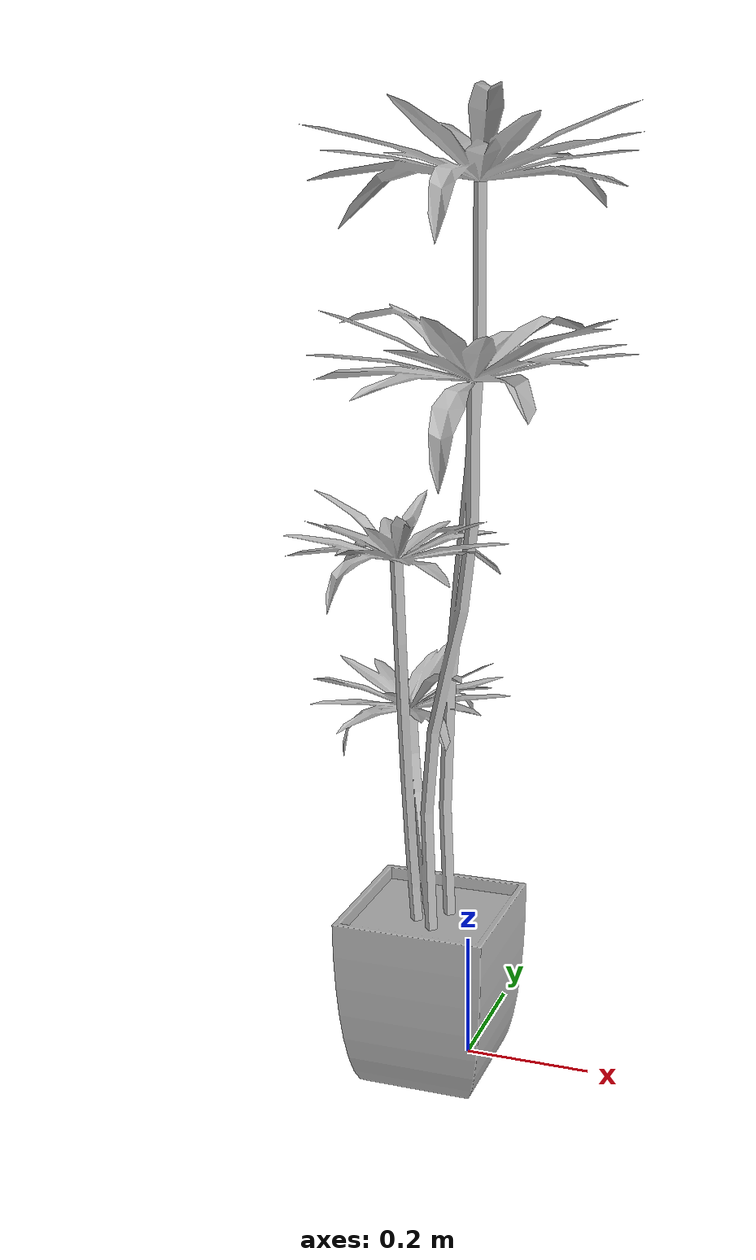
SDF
<?xml version='1.0'?>
<sdf version='1.4'>
  <model name='623'>
    <pose>0 0 0 0 0 0</pose>
    <static>true</static>
    <link name='link'>
      <collision name='collision'>
        <pose>0 0 0 0 0 0</pose>
        <geometry>
          <box>
            <size>0.529798 0.561408 2</size>
          </box>
        </geometry>
      </collision>
      <visual name='visual'>
        <pose>0 0 0 0 0 0</pose>
        <geometry>
          <mesh><uri>model://623/623.dae</uri></mesh>
        </geometry>
      </visual>
    </link>
  </model>
</sdf>
